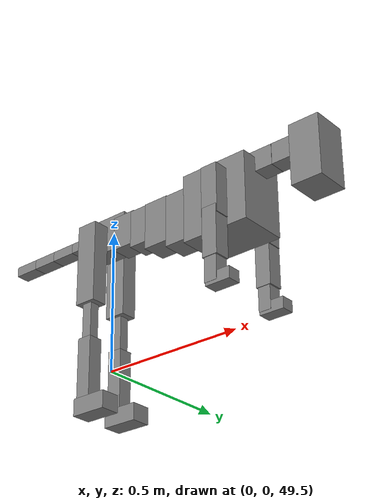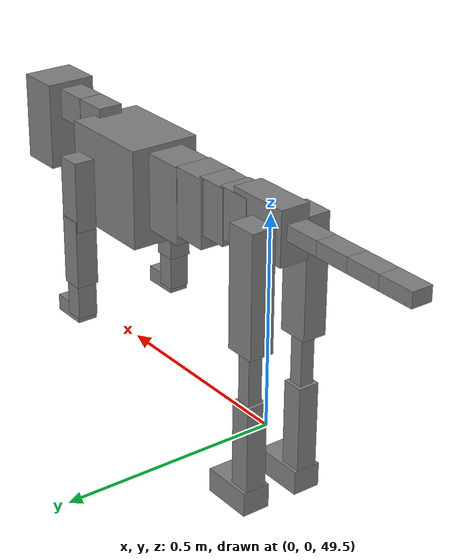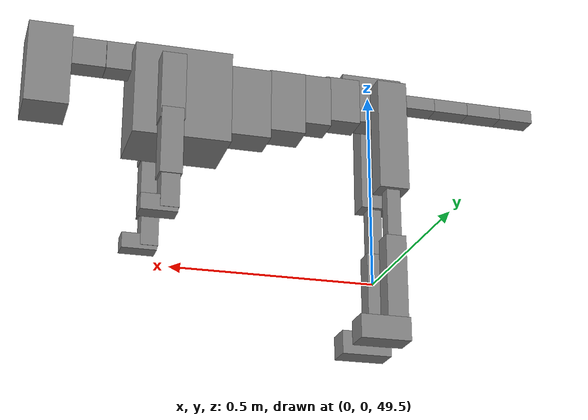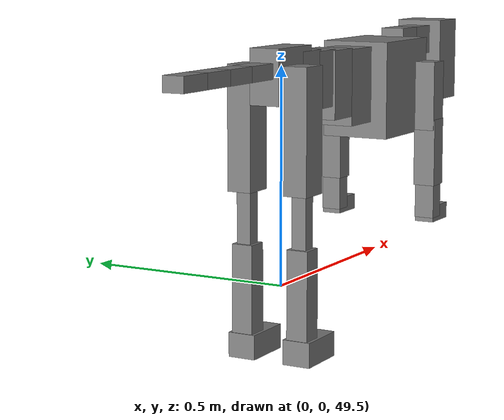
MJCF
<mujoco model="dog">

    <default>
        <joint armature="0.02" stiffness="1" damping="0.2" limited="true"/>
        <geom condim="3" friction="1 0.05 0.05" margin="0.01"/>
        <motor ctrllimited="true" ctrlrange="-1.0 1.0" forcelimited="true" gear="50"/>
    </default>

    <compiler inertiafromgeom="true" angle="radian"/>

    <option timestep="0.016" iterations="50" tolerance="1e-10" solver="Newton" jacobian="dense" cone="pyramidal"/>

    <size nconmax="20000" njmax="60000" nstack="5000000"/>
    <visual>
        <map force="0.1" zfar="30"/>
        <rgba haze="0.15 0.25 0.35 1"/>
        <quality shadowsize="2048"/>
        <global offwidth="800" offheight="800"/>
    </visual>

    <asset>
        <texture type="skybox" builtin="gradient" rgb1="0.3 0.5 0.7" rgb2="0 0 0" width="512" height="512"/>
        <texture name="texplane" type="2d" builtin="checker" rgb1=".2 .3 .4" rgb2=".1 0.15 0.2" width="512" height="512"
                 mark="cross" markrgb=".8 .8 .8"/>
        <texture name="texgeom" type="cube" builtin="flat" mark="cross" width="127" height="1278" rgb1="0.8 0.6 0.4"
                 rgb2="0.8 0.6 0.4" markrgb="1 1 1" random="0.01"/>

        <material name="matplane" reflectance="0.3" texture="texplane" texrepeat="1 1" texuniform="true"/>
        <material name="matgeom" texture="texgeom" texuniform="true" rgba="0.8 0.6 .4 1"/>
    </asset>

    <worldbody>
        <geom name="floor" pos="0 0 0" size="0 0 .25" type="plane" material="matplane" condim="3"/>

        <light directional="false" diffuse=".2 .2 .2" specular="0 0 0" pos="0 0 5" dir="0 0 -1" castshadow="false"/>
        <light mode="targetbodycom" target="torso" directional="false" diffuse=".8 .8 .8" specular="0.3 0.3 0.3"
               pos="0 0 4.0" dir="0 0 -1"/>

        <body name="root" pos="0 0 50">
            <freejoint name="root_1"/>
            <geom type="box" pos="0 0 -0.02" size="0.0774  0.0358  0.063" density="2030"/>

            <body name="spine1" pos="0.054 0 0">
                <joint name="spine1_y" axis="0 1 0" range="0 0.7" limited="true"/>
                <geom type="box" pos="0.02375 0 -0.03" size="0.04375  0.0375  0.05985" density="2030"/>

                <body name="spine2" pos="0.0612 0 0">
                    <joint name="spine2_y" axis="0 1 0" range="-0.15 0.15" limited="true"/>
                    <geom type="box" pos="0.03555  0  -0.04" size="0.04055  0.039  0.06615" density="2030"/>

                    <body name="spine3" pos="0.0730 0 0">
                        <joint name="spine3_y" axis="0 1 0" range="-0.15 0.15" limited="true"/>
                        <geom type="box" pos="0.03555  0  -0.057" size="0.04555  0.0445  0.081" density="2030"/>

                        <body name="spine4" pos="0.0780 0 0">
                            <joint name="spine4_y" axis="0 1 0" range="-0.15 0.15" limited="true"/>
                            <geom type="box" pos="0.05265  0  -0.07" size="0.05265  0.045  0.09135" density="2030"/>

                            <body name="torso" pos="0.1082 0 0">
                                <joint name="torso_y" axis="0 1 0" range="-0.15 0.15" limited="true"/>
                                <geom type="box" pos="0.11925  0  -0.085" size="0.11925  0.085  0.11745"
                                      density="2030"/>

                                <body name="neck1" pos="0.2160  0   0.0180">
                                    <joint name="neck1_y" axis="0 1 0" range="-1.2  -1" limited="true"/>
                                    <geom type="box" pos="0.0423  0  0" size="0.0423  0.03  0.036" density="2325"/>

                                    <body name="neck2" pos="0.0853  0  0">
                                        <joint name="neck2_y" axis="0 1 0" range="0.1  0" limited="true"/>
                                        <geom type="box" pos="0.0423  0  0" size="0.0423  0.03  0.036" density="2325"/>

                                        <body name="head" pos="0.0853  0  0">
                                            <joint name="head_y" axis="0 1 0" range="-0.3  -0.2" limited="true"/>
                                            <geom type="box" pos="0.0531  0  -0.055" size="0.0531  0.06  0.1044"
                                                  density="4030"/>

                                        </body>
                                    </body>
                                </body>

                                <body name="front_shoulder" pos="0.156  0   -0.0480">
                                    <joint name="front_shoulder_y" axis="0 1 0" range="-1 1.5" limited="true"/>
                                    <geom type="box" pos="0 0.13 -0.0580" size="0.0293  0.0251  0.0846" density="1158"/>
                                    <geom type="box" pos="0 -0.13 -0.0580" size="0.0293  0.0251  0.0846"
                                          density="1158"/>

                                    <body name="front_elbow" pos="0  0  -0.1160">
                                        <joint name="front_elbow_y" axis="0 1 0" range="-2 0" limited="true"/>
                                        <geom type="box" pos="0 0.13 -0.0827" size="0.0266  0.0272  0.0827"
                                              density="1081"/>
                                        <geom type="box" pos="0 -0.13 -0.0827" size="0.0266  0.0272  0.0827"
                                              density="1081"/>

                                        <body name="front_wrist" pos="0  0  -0.1654">
                                            <joint name="front_wrist_y" axis="0 1 0" range="-0.2 0" limited="true"/>
                                            <geom type="box" pos="0 0.13 -0.0345" size="0.0221  0.0245  0.0477"
                                                  density="1664"/>
                                            <geom type="box" pos="0 -0.13 -0.0345" size="0.0221  0.0245  0.0477"
                                                  density="1664"/>

                                            <body name="front_finger_end" pos="0  0  -0.0690">
                                                <joint name="front_finger_y" axis="0 1 0" range="-0.4 1"
                                                       limited="true"/>
                                                <geom type="box" pos="0.0238  0.13  -0.0046"
                                                      size="0.0436  0.0238  0.0196" density="1515"/>
                                                <geom type="box" pos="0.0238  -0.13  -0.0046"
                                                      size="0.0436  0.0238  0.0196" density="1515"/>

                                            </body>

                                        </body>
                                    </body>
                                </body>

                            </body>
                        </body>
                    </body>
                </body>
            </body>

            <body name="back_hip" pos="-0.03 0 -0.018">
                <joint name="back_hip_y" axis="0 1 0" range="-1.5 0.3" limited="true"/>
                <geom type="box" pos="0 0.07 -0.1200" size="0.0374  0.0293  0.1428" density="1154"/>
                <geom type="box" pos="0 -0.07 -0.1200" size="0.0374  0.0293  0.1428" density="1154"/>

                <body name="back_knee" pos="0  0  -0.2400">
                    <joint name="back_knee_y" axis="0 1 0" range="0 2.8" limited="true"/>
                    <geom type="box" pos="0 0.07 -0.0776" size="0.0174  0.0172  0.0931" density="1227"/>
                    <geom type="box" pos="0 -0.07 -0.0776" size="0.0174  0.0172  0.0931" density="1227"/>

                    <body name="back_ankle" pos="0  0  -0.1551">
                        <joint name="back_ankle_y" axis="0 1 0" range="-2.2 0" limited="true"/>
                        <geom type="box" pos="0 0.07 -0.1045" size="0.0256  0.0256  0.1157" density="1284"/>
                        <geom type="box" pos="0 -0.07 -0.1045" size="0.0256  0.0256  0.1157" density="1284"/>

                        <body name="back_toe_end" pos="0  0  -0.2090">
                            <joint name="back_toe_y" axis="0 1 0" range="-0.4 1" limited="true"/>
                            <geom type="box" pos="0.0335  0.07  -0.0137" size="0.0615  0.0335  0.0287" density="1515"/>
                            <geom type="box" pos="0.0335  -0.07  -0.0137" size="0.0615  0.0335  0.0287" density="1515"/>

                        </body>
                    </body>
                </body>
            </body>

            <body name="tail1" pos="-0.074 0 -0.006">
                <joint name="tail1_y" axis="0 1 0" range="-0.2 0.2" limited="true"/>
                <geom type="box" pos="-0.0536  0  0" size="0.045  0.025  0.0175" density="1587"/>

                <body name="tail2" pos="-0.09 0 0">
                    <joint name="tail2_y" axis="0 1 0" range="-0.2 0.2" limited="true"/>
                    <geom type="box" pos="-0.0536  0  0" size="0.045  0.025  0.0175" density="1587"/>

                    <body name="tail3" pos="-0.09 0 0">
                        <joint name="tail3_y" axis="0 1 0" range="-0.2 0.2" limited="true"/>
                        <geom type="box" pos="-0.0536  0  0" size="0.045  0.025  0.0175" density="1587"/>

                        <body name="tail4" pos="-0.09 0 0">
                            <joint name="tail4_y" axis="0 1 0" range="-0.2 0.2" limited="true"/>
                            <geom type="box" pos="-0.0536  0  0" size="0.045  0.025  0.0175" density="1587"/>

                        </body>
                    </body>
                </body>
            </body>
        </body>
    </worldbody>

    <actuator>
        <motor joint="spine1_y" forcerange="-150 150     "/>
        <motor joint="spine2_y" forcerange="-150 150     "/>
        <motor joint="spine3_y" forcerange="-150 150     "/>
        <motor joint="spine4_y" forcerange="-150 150     "/>
        <motor joint="torso_y" forcerange="-150 150     "/>
        <motor joint="neck1_y" forcerange="-100 100       "/>
        <motor joint="neck2_y" forcerange="-100 100       "/>
        <motor joint="head_y" forcerange="-150 150       "/>
        <motor joint="front_shoulder_y" forcerange="-120.86 146.17"/>
        <motor joint="front_elbow_y" forcerange="-170.38 127.73"/>
        <motor joint="front_wrist_y" forcerange="-130.41 65.67"/>
        <motor joint="front_finger_y" forcerange="-36.60 50.10"/>
        <motor joint="back_hip_y" forcerange="-345.42 245.80"/>
        <motor joint="back_knee_y" forcerange="-217.82 232.32"/>
        <motor joint="back_angle_y" forcerange="-131.39 177.89"/>
        <motor joint="back_toe_y" forcerange="-89.52 98.63"/>
        <motor joint="tail1_y" forcerange="-50 50     "/>
        <motor joint="tail2_y" forcerange="-50 50     "/>
        <motor joint="tail3_y" forcerange="-50 50     "/>
        <motor joint="tail4_y" forcerange="-50 50     "/>
    </actuator>
</mujoco>
